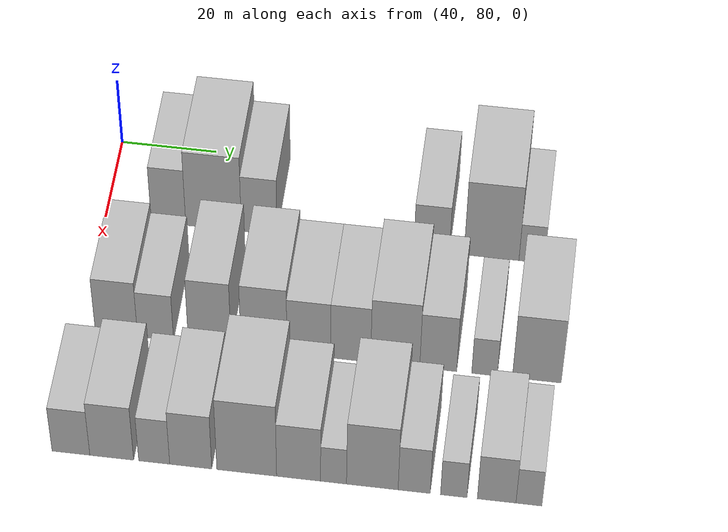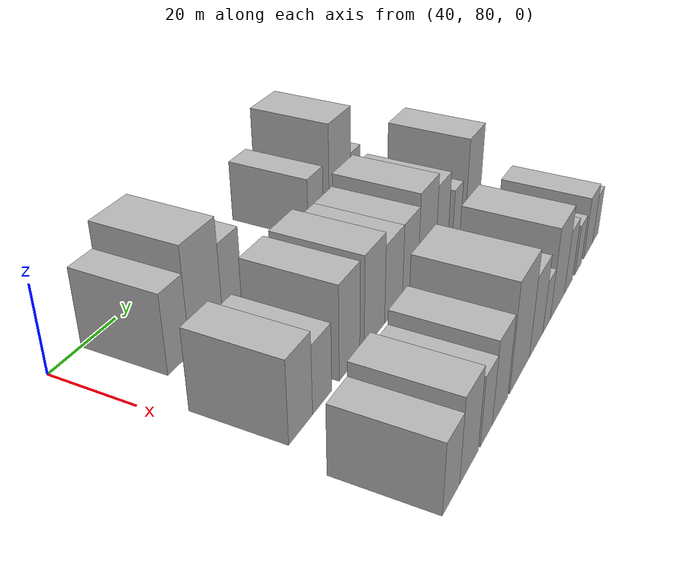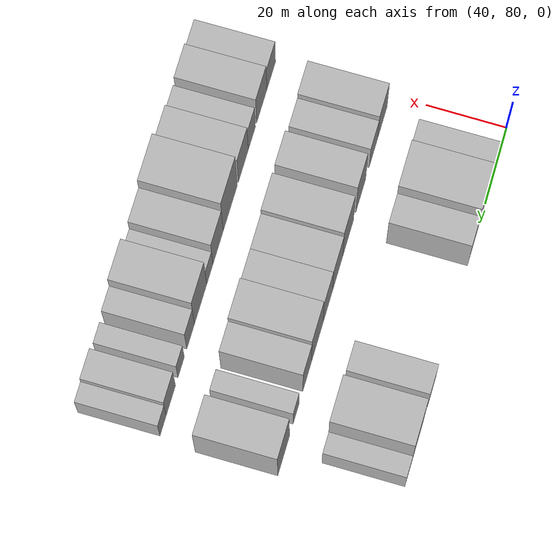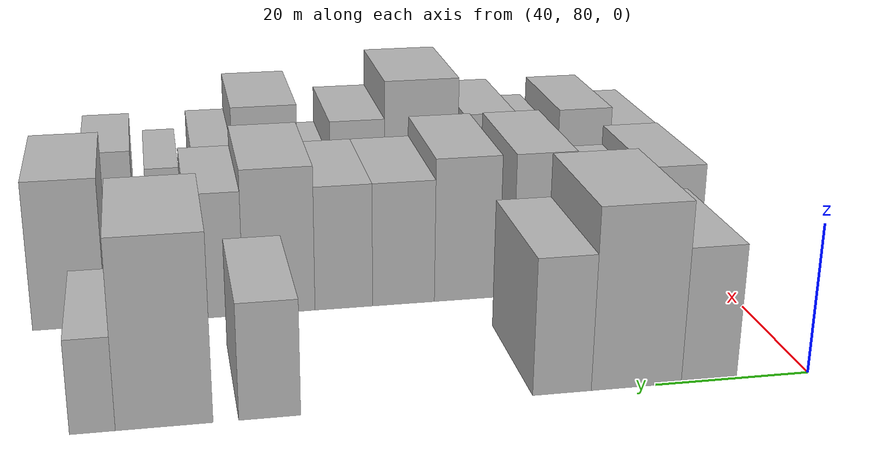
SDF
<sdf version="1.6">
 <world name="default">
  <model name="building_50">
   <static>1</static>
   <pose>50.0000 93.1037 0 0.000000 0.000000 0.000000</pose>
   <link name="link">
    <pose>0 0 9.00 0 0 0</pose>
    <collision name="collision"><geometry><box><size>20.0000 7.2151 18.0000</size></box></geometry></collision>
    <visual name="visual">
     <cast_shadows>0</cast_shadows>
     <geometry><box><size>20.0000 7.2151 18.0000</size></box></geometry>
     <material>
      <script>
       <uri>model://HANNAS_wall/materials/scripts</uri>
       <uri>model://HANNAS_wall/materials/textures</uri>
       <name>vrc/HANNAS_wall</name>
      </script>
     </material>
    </visual>
   </link>
  </model>
  <model name="building_51">
   <static>1</static>
   <pose>50.0000 102.4961 0 0.000000 0.000000 0.000000</pose>
   <link name="link">
    <pose>0 0 12.00 0 0 0</pose>
    <collision name="collision"><geometry><box><size>20.0000 11.5699 24.0000</size></box></geometry></collision>
    <visual name="visual">
     <cast_shadows>0</cast_shadows>
     <geometry><box><size>20.0000 11.5699 24.0000</size></box></geometry>
     <material>
      <script>
       <uri>model://HANNAS_wall/materials/scripts</uri>
       <uri>model://HANNAS_wall/materials/textures</uri>
       <name>vrc/HANNAS_wall</name>
      </script>
     </material>
    </visual>
   </link>
  </model>
  <model name="building_52">
   <static>1</static>
   <pose>50.0000 111.9788 0 0.000000 0.000000 0.000000</pose>
   <link name="link">
    <pose>0 0 9.00 0 0 0</pose>
    <collision name="collision"><geometry><box><size>20.0000 7.3954 18.0000</size></box></geometry></collision>
    <visual name="visual">
     <cast_shadows>0</cast_shadows>
     <geometry><box><size>20.0000 7.3954 18.0000</size></box></geometry>
     <material>
      <script>
       <uri>model://HANNAS_wall/materials/scripts</uri>
       <uri>model://HANNAS_wall/materials/textures</uri>
       <name>vrc/HANNAS_wall</name>
      </script>
     </material>
    </visual>
   </link>
  </model>
  <model name="building_53">
   <static>1</static>
   <pose>50.0000 147.6479 0 0.000000 0.000000 0.000000</pose>
   <link name="link">
    <pose>0 0 7.50 0 0 0</pose>
    <collision name="collision"><geometry><box><size>20.0000 7.3143 15.0000</size></box></geometry></collision>
    <visual name="visual">
     <cast_shadows>0</cast_shadows>
     <geometry><box><size>20.0000 7.3143 15.0000</size></box></geometry>
     <material>
      <script>
       <uri>model://HANNAS_wall/materials/scripts</uri>
       <uri>model://HANNAS_wall/materials/textures</uri>
       <name>vrc/HANNAS_wall</name>
      </script>
     </material>
    </visual>
   </link>
  </model>
  <model name="building_54">
   <static>1</static>
   <pose>50.0000 159.9370 0 0.000000 0.000000 0.000000</pose>
   <link name="link">
    <pose>0 0 12.00 0 0 0</pose>
    <collision name="collision"><geometry><box><size>20.0000 11.2640 24.0000</size></box></geometry></collision>
    <visual name="visual">
     <cast_shadows>0</cast_shadows>
     <geometry><box><size>20.0000 11.2640 24.0000</size></box></geometry>
     <material>
      <script>
       <uri>model://HANNAS_wall/materials/scripts</uri>
       <uri>model://HANNAS_wall/materials/textures</uri>
       <name>vrc/HANNAS_wall</name>
      </script>
     </material>
    </visual>
   </link>
  </model>
  <model name="building_55">
   <static>1</static>
   <pose>50.0000 168.1762 0 0.000000 0.000000 0.000000</pose>
   <link name="link">
    <pose>0 0 6.00 0 0 0</pose>
    <collision name="collision"><geometry><box><size>20.0000 5.2142 12.0000</size></box></geometry></collision>
    <visual name="visual">
     <cast_shadows>0</cast_shadows>
     <geometry><box><size>20.0000 5.2142 12.0000</size></box></geometry>
     <material>
      <script>
       <uri>model://HANNAS_wall/materials/scripts</uri>
       <uri>model://HANNAS_wall/materials/textures</uri>
       <name>vrc/HANNAS_wall</name>
      </script>
     </material>
    </visual>
   </link>
  </model>
  <model name="building_121">
   <static>1</static>
   <pose>79.0000 87.2828 0 0.000000 0.000000 0.000000</pose>
   <link name="link">
    <pose>0 0 9.00 0 0 0</pose>
    <collision name="collision"><geometry><box><size>20.0000 8.5730 18.0000</size></box></geometry></collision>
    <visual name="visual">
     <cast_shadows>0</cast_shadows>
     <geometry><box><size>20.0000 8.5730 18.0000</size></box></geometry>
     <material>
      <script>
       <uri>model://HANNAS_wall/materials/scripts</uri>
       <uri>model://HANNAS_wall/materials/textures</uri>
       <name>vrc/HANNAS_wall</name>
      </script>
     </material>
    </visual>
   </link>
  </model>
  <model name="building_122">
   <static>1</static>
   <pose>79.0000 95.2167 0 0.000000 0.000000 0.000000</pose>
   <link name="link">
    <pose>0 0 7.50 0 0 0</pose>
    <collision name="collision"><geometry><box><size>20.0000 7.2949 15.0000</size></box></geometry></collision>
    <visual name="visual">
     <cast_shadows>0</cast_shadows>
     <geometry><box><size>20.0000 7.2949 15.0000</size></box></geometry>
     <material>
      <script>
       <uri>model://HANNAS_wall/materials/scripts</uri>
       <uri>model://HANNAS_wall/materials/textures</uri>
       <name>vrc/HANNAS_wall</name>
      </script>
     </material>
    </visual>
   </link>
  </model>
  <model name="building_123">
   <static>1</static>
   <pose>79.0000 106.1734 0 0.000000 0.000000 0.000000</pose>
   <link name="link">
    <pose>0 0 10.50 0 0 0</pose>
    <collision name="collision"><geometry><box><size>20.0000 8.6186 21.0000</size></box></geometry></collision>
    <visual name="visual">
     <cast_shadows>0</cast_shadows>
     <geometry><box><size>20.0000 8.6186 21.0000</size></box></geometry>
     <material>
      <script>
       <uri>model://HANNAS_wall/materials/scripts</uri>
       <uri>model://HANNAS_wall/materials/textures</uri>
       <name>vrc/HANNAS_wall</name>
      </script>
     </material>
    </visual>
   </link>
  </model>
  <model name="building_124">
   <static>1</static>
   <pose>79.0000 117.1242 0 0.000000 0.000000 0.000000</pose>
   <link name="link">
    <pose>0 0 10.50 0 0 0</pose>
    <collision name="collision"><geometry><box><size>20.0000 9.2830 21.0000</size></box></geometry></collision>
    <visual name="visual">
     <cast_shadows>0</cast_shadows>
     <geometry><box><size>20.0000 9.2830 21.0000</size></box></geometry>
     <material>
      <script>
       <uri>model://HANNAS_wall/materials/scripts</uri>
       <uri>model://HANNAS_wall/materials/textures</uri>
       <name>vrc/HANNAS_wall</name>
      </script>
     </material>
    </visual>
   </link>
  </model>
  <model name="building_125">
   <static>1</static>
   <pose>79.0000 126.1529 0 0.000000 0.000000 0.000000</pose>
   <link name="link">
    <pose>0 0 9.00 0 0 0</pose>
    <collision name="collision"><geometry><box><size>20.0000 8.7744 18.0000</size></box></geometry></collision>
    <visual name="visual">
     <cast_shadows>0</cast_shadows>
     <geometry><box><size>20.0000 8.7744 18.0000</size></box></geometry>
     <material>
      <script>
       <uri>model://HANNAS_wall/materials/scripts</uri>
       <uri>model://HANNAS_wall/materials/textures</uri>
       <name>vrc/HANNAS_wall</name>
      </script>
     </material>
    </visual>
   </link>
  </model>
  <model name="building_126">
   <static>1</static>
   <pose>79.0000 134.5566 0 0.000000 0.000000 0.000000</pose>
   <link name="link">
    <pose>0 0 9.00 0 0 0</pose>
    <collision name="collision"><geometry><box><size>20.0000 8.0329 18.0000</size></box></geometry></collision>
    <visual name="visual">
     <cast_shadows>0</cast_shadows>
     <geometry><box><size>20.0000 8.0329 18.0000</size></box></geometry>
     <material>
      <script>
       <uri>model://HANNAS_wall/materials/scripts</uri>
       <uri>model://HANNAS_wall/materials/textures</uri>
       <name>vrc/HANNAS_wall</name>
      </script>
     </material>
    </visual>
   </link>
  </model>
  <model name="building_127">
   <static>1</static>
   <pose>79.0000 143.4894 0 0.000000 0.000000 0.000000</pose>
   <link name="link">
    <pose>0 0 10.50 0 0 0</pose>
    <collision name="collision"><geometry><box><size>20.0000 9.8327 21.0000</size></box></geometry></collision>
    <visual name="visual">
     <cast_shadows>0</cast_shadows>
     <geometry><box><size>20.0000 9.8327 21.0000</size></box></geometry>
     <material>
      <script>
       <uri>model://HANNAS_wall/materials/scripts</uri>
       <uri>model://HANNAS_wall/materials/textures</uri>
       <name>vrc/HANNAS_wall</name>
      </script>
     </material>
    </visual>
   </link>
  </model>
  <model name="building_128">
   <static>1</static>
   <pose>79.0000 152.0933 0 0.000000 0.000000 0.000000</pose>
   <link name="link">
    <pose>0 0 9.00 0 0 0</pose>
    <collision name="collision"><geometry><box><size>20.0000 7.3751 18.0000</size></box></geometry></collision>
    <visual name="visual">
     <cast_shadows>0</cast_shadows>
     <geometry><box><size>20.0000 7.3751 18.0000</size></box></geometry>
     <material>
      <script>
       <uri>model://HANNAS_wall/materials/scripts</uri>
       <uri>model://HANNAS_wall/materials/textures</uri>
       <name>vrc/HANNAS_wall</name>
      </script>
     </material>
    </visual>
   </link>
  </model>
  <model name="building_129">
   <static>1</static>
   <pose>79.0000 161.3317 0 0.000000 0.000000 0.000000</pose>
   <link name="link">
    <pose>0 0 6.00 0 0 0</pose>
    <collision name="collision"><geometry><box><size>20.0000 5.1016 12.0000</size></box></geometry></collision>
    <visual name="visual">
     <cast_shadows>0</cast_shadows>
     <geometry><box><size>20.0000 5.1016 12.0000</size></box></geometry>
     <material>
      <script>
       <uri>model://HANNAS_wall/materials/scripts</uri>
       <uri>model://HANNAS_wall/materials/textures</uri>
       <name>vrc/HANNAS_wall</name>
      </script>
     </material>
    </visual>
   </link>
  </model>
  <model name="building_130">
   <static>1</static>
   <pose>79.0000 171.7281 0 0.000000 0.000000 0.000000</pose>
   <link name="link">
    <pose>0 0 10.50 0 0 0</pose>
    <collision name="collision"><geometry><box><size>20.0000 9.6912 21.0000</size></box></geometry></collision>
    <visual name="visual">
     <cast_shadows>0</cast_shadows>
     <geometry><box><size>20.0000 9.6912 21.0000</size></box></geometry>
     <material>
      <script>
       <uri>model://HANNAS_wall/materials/scripts</uri>
       <uri>model://HANNAS_wall/materials/textures</uri>
       <name>vrc/HANNAS_wall</name>
      </script>
     </material>
    </visual>
   </link>
  </model>
  <model name="building_193">
   <static>1</static>
   <pose>108.0000 83.3357 0 0.000000 0.000000 0.000000</pose>
   <link name="link">
    <pose>0 0 7.50 0 0 0</pose>
    <collision name="collision"><geometry><box><size>20.0000 7.4614 15.0000</size></box></geometry></collision>
    <visual name="visual">
     <cast_shadows>0</cast_shadows>
     <geometry><box><size>20.0000 7.4614 15.0000</size></box></geometry>
     <material>
      <script>
       <uri>model://HANNAS_wall/materials/scripts</uri>
       <uri>model://HANNAS_wall/materials/textures</uri>
       <name>vrc/HANNAS_wall</name>
      </script>
     </material>
    </visual>
   </link>
  </model>
  <model name="building_194">
   <static>1</static>
   <pose>108.0000 91.3852 0 0.000000 0.000000 0.000000</pose>
   <link name="link">
    <pose>0 0 9.00 0 0 0</pose>
    <collision name="collision"><geometry><box><size>20.0000 8.6377 18.0000</size></box></geometry></collision>
    <visual name="visual">
     <cast_shadows>0</cast_shadows>
     <geometry><box><size>20.0000 8.6377 18.0000</size></box></geometry>
     <material>
      <script>
       <uri>model://HANNAS_wall/materials/scripts</uri>
       <uri>model://HANNAS_wall/materials/textures</uri>
       <name>vrc/HANNAS_wall</name>
      </script>
     </material>
    </visual>
   </link>
  </model>
  <model name="building_195">
   <static>1</static>
   <pose>108.0000 99.7517 0 0.000000 0.000000 0.000000</pose>
   <link name="link">
    <pose>0 0 7.50 0 0 0</pose>
    <collision name="collision"><geometry><box><size>20.0000 6.0953 15.0000</size></box></geometry></collision>
    <visual name="visual">
     <cast_shadows>0</cast_shadows>
     <geometry><box><size>20.0000 6.0953 15.0000</size></box></geometry>
     <material>
      <script>
       <uri>model://HANNAS_wall/materials/scripts</uri>
       <uri>model://HANNAS_wall/materials/textures</uri>
       <name>vrc/HANNAS_wall</name>
      </script>
     </material>
    </visual>
   </link>
  </model>
  <model name="building_196">
   <static>1</static>
   <pose>108.0000 106.9293 0 0.000000 0.000000 0.000000</pose>
   <link name="link">
    <pose>0 0 9.00 0 0 0</pose>
    <collision name="collision"><geometry><box><size>20.0000 8.2600 18.0000</size></box></geometry></collision>
    <visual name="visual">
     <cast_shadows>0</cast_shadows>
     <geometry><box><size>20.0000 8.2600 18.0000</size></box></geometry>
     <material>
      <script>
       <uri>model://HANNAS_wall/materials/scripts</uri>
       <uri>model://HANNAS_wall/materials/textures</uri>
       <name>vrc/HANNAS_wall</name>
      </script>
     </material>
    </visual>
   </link>
  </model>
  <model name="building_197">
   <static>1</static>
   <pose>108.0000 117.9031 0 0.000000 0.000000 0.000000</pose>
   <link name="link">
    <pose>0 0 12.00 0 0 0</pose>
    <collision name="collision"><geometry><box><size>20.0000 11.6876 24.0000</size></box></geometry></collision>
    <visual name="visual">
     <cast_shadows>0</cast_shadows>
     <geometry><box><size>20.0000 11.6876 24.0000</size></box></geometry>
     <material>
      <script>
       <uri>model://HANNAS_wall/materials/scripts</uri>
       <uri>model://HANNAS_wall/materials/textures</uri>
       <name>vrc/HANNAS_wall</name>
      </script>
     </material>
    </visual>
   </link>
  </model>
  <model name="building_198">
   <static>1</static>
   <pose>108.0000 128.0422 0 0.000000 0.000000 0.000000</pose>
   <link name="link">
    <pose>0 0 9.00 0 0 0</pose>
    <collision name="collision"><geometry><box><size>20.0000 8.5906 18.0000</size></box></geometry></collision>
    <visual name="visual">
     <cast_shadows>0</cast_shadows>
     <geometry><box><size>20.0000 8.5906 18.0000</size></box></geometry>
     <material>
      <script>
       <uri>model://HANNAS_wall/materials/scripts</uri>
       <uri>model://HANNAS_wall/materials/textures</uri>
       <name>vrc/HANNAS_wall</name>
      </script>
     </material>
    </visual>
   </link>
  </model>
  <model name="building_199">
   <static>1</static>
   <pose>108.0000 134.8621 0 0.000000 0.000000 0.000000</pose>
   <link name="link">
    <pose>0 0 6.00 0 0 0</pose>
    <collision name="collision"><geometry><box><size>20.0000 5.0491 12.0000</size></box></geometry></collision>
    <visual name="visual">
     <cast_shadows>0</cast_shadows>
     <geometry><box><size>20.0000 5.0491 12.0000</size></box></geometry>
     <material>
      <script>
       <uri>model://HANNAS_wall/materials/scripts</uri>
       <uri>model://HANNAS_wall/materials/textures</uri>
       <name>vrc/HANNAS_wall</name>
      </script>
     </material>
    </visual>
   </link>
  </model>
  <model name="building_200">
   <static>1</static>
   <pose>108.0000 142.4072 0 0.000000 0.000000 0.000000</pose>
   <link name="link">
    <pose>0 0 10.50 0 0 0</pose>
    <collision name="collision"><geometry><box><size>20.0000 10.0410 21.0000</size></box></geometry></collision>
    <visual name="visual">
     <cast_shadows>0</cast_shadows>
     <geometry><box><size>20.0000 10.0410 21.0000</size></box></geometry>
     <material>
      <script>
       <uri>model://HANNAS_wall/materials/scripts</uri>
       <uri>model://HANNAS_wall/materials/textures</uri>
       <name>vrc/HANNAS_wall</name>
      </script>
     </material>
    </visual>
   </link>
  </model>
  <model name="building_201">
   <static>1</static>
   <pose>108.0000 150.5391 0 0.000000 0.000000 0.000000</pose>
   <link name="link">
    <pose>0 0 7.50 0 0 0</pose>
    <collision name="collision"><geometry><box><size>20.0000 6.2229 15.0000</size></box></geometry></collision>
    <visual name="visual">
     <cast_shadows>0</cast_shadows>
     <geometry><box><size>20.0000 6.2229 15.0000</size></box></geometry>
     <material>
      <script>
       <uri>model://HANNAS_wall/materials/scripts</uri>
       <uri>model://HANNAS_wall/materials/textures</uri>
       <name>vrc/HANNAS_wall</name>
      </script>
     </material>
    </visual>
   </link>
  </model>
  <model name="building_202">
   <static>1</static>
   <pose>108.0000 158.2154 0 0.000000 0.000000 0.000000</pose>
   <link name="link">
    <pose>0 0 6.00 0 0 0</pose>
    <collision name="collision"><geometry><box><size>20.0000 5.1296 12.0000</size></box></geometry></collision>
    <visual name="visual">
     <cast_shadows>0</cast_shadows>
     <geometry><box><size>20.0000 5.1296 12.0000</size></box></geometry>
     <material>
      <script>
       <uri>model://HANNAS_wall/materials/scripts</uri>
       <uri>model://HANNAS_wall/materials/textures</uri>
       <name>vrc/HANNAS_wall</name>
      </script>
     </material>
    </visual>
   </link>
  </model>
  <model name="building_203">
   <static>1</static>
   <pose>108.0000 166.5105 0 0.000000 0.000000 0.000000</pose>
   <link name="link">
    <pose>0 0 7.50 0 0 0</pose>
    <collision name="collision"><geometry><box><size>20.0000 7.4605 15.0000</size></box></geometry></collision>
    <visual name="visual">
     <cast_shadows>0</cast_shadows>
     <geometry><box><size>20.0000 7.4605 15.0000</size></box></geometry>
     <material>
      <script>
       <uri>model://HANNAS_wall/materials/scripts</uri>
       <uri>model://HANNAS_wall/materials/textures</uri>
       <name>vrc/HANNAS_wall</name>
      </script>
     </material>
    </visual>
   </link>
  </model>
  <model name="building_204">
   <static>1</static>
   <pose>108.0000 172.7390 0 0.000000 0.000000 0.000000</pose>
   <link name="link">
    <pose>0 0 6.00 0 0 0</pose>
    <collision name="collision"><geometry><box><size>20.0000 4.9966 12.0000</size></box></geometry></collision>
    <visual name="visual">
     <cast_shadows>0</cast_shadows>
     <geometry><box><size>20.0000 4.9966 12.0000</size></box></geometry>
     <material>
      <script>
       <uri>model://HANNAS_wall/materials/scripts</uri>
       <uri>model://HANNAS_wall/materials/textures</uri>
       <name>vrc/HANNAS_wall</name>
      </script>
     </material>
    </visual>
   </link>
  </model>
 </world>
</sdf>
